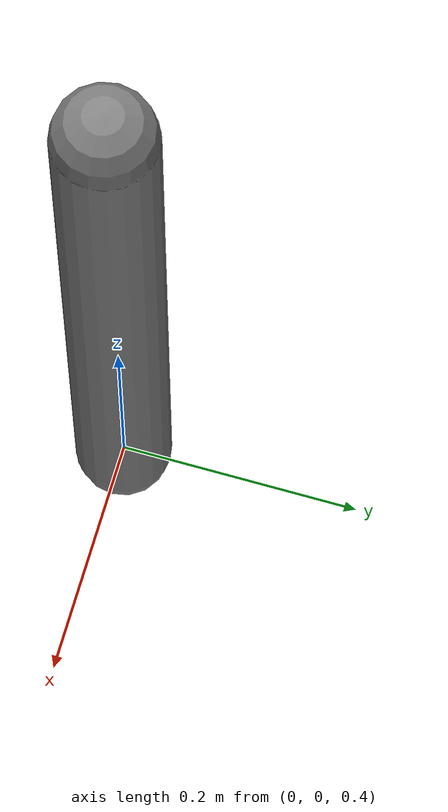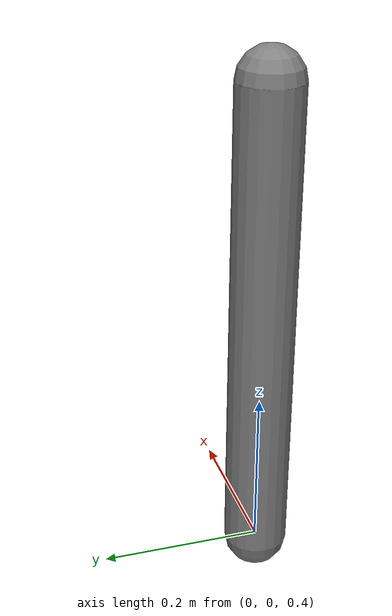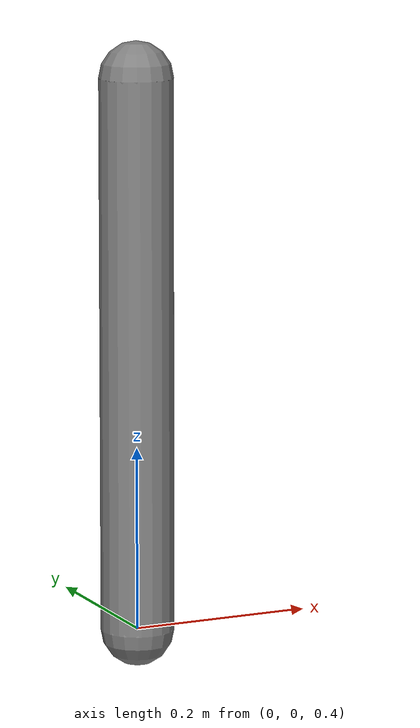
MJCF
<mujoco model="pendulum">
  <option timestep="0.01" gravity="0 0 -9.81"/>
  <worldbody>
    <body name="pendulum" pos="0 0 1">
      <joint name="hinge" type="hinge" axis="0 1 0"/>
      <geom type="capsule" fromto="0 0 0 0 0 -0.6" size="0.04" density="600"/>
    </body>
  </worldbody>
  <actuator>
    <motor name="hinge_motor" joint="hinge" gear="50"/>
  </actuator>
  <sensor>
    <jointpos name="hinge_pos" joint="hinge"/>
    <jointvel name="hinge_vel" joint="hinge"/>
  </sensor>
</mujoco>
